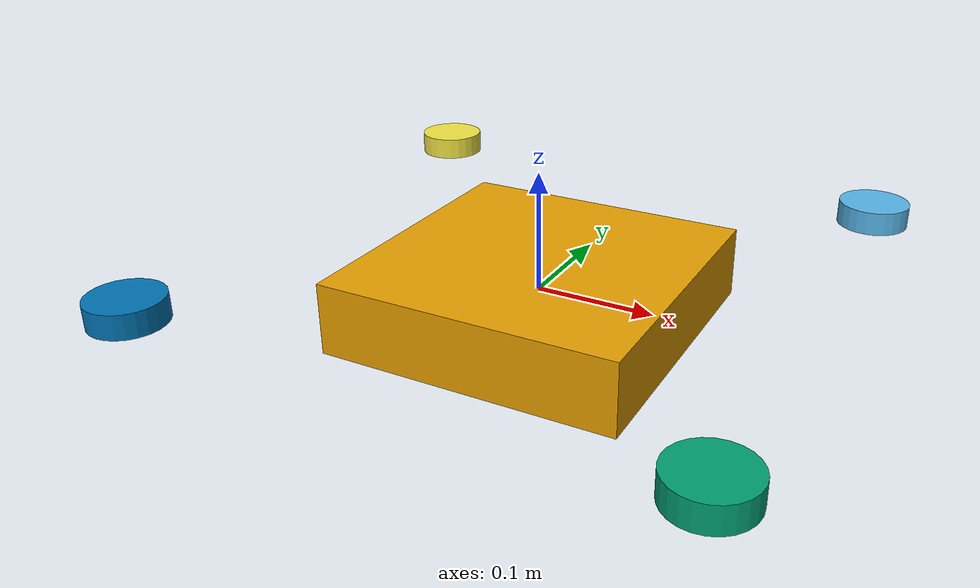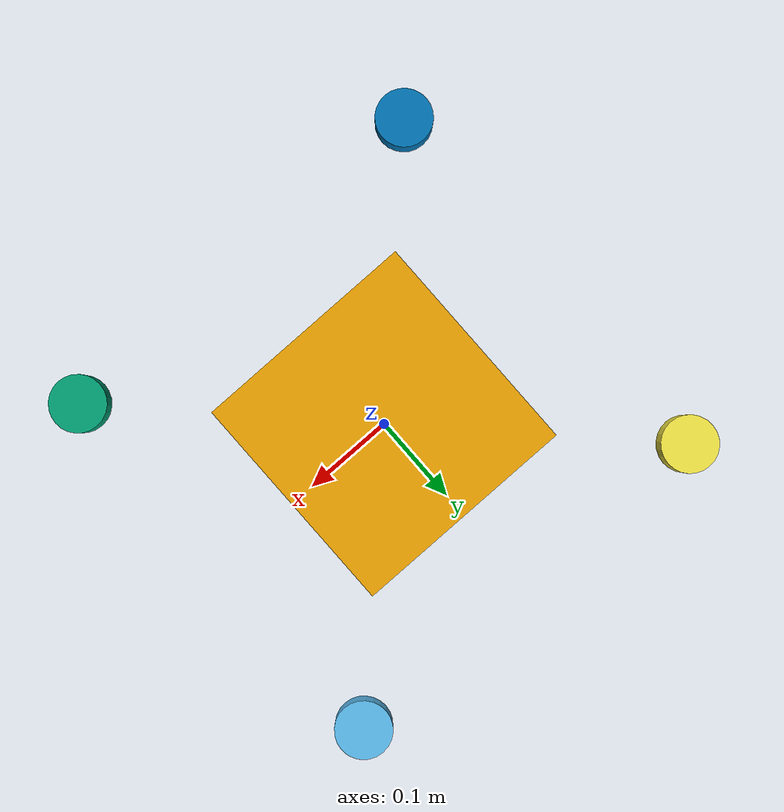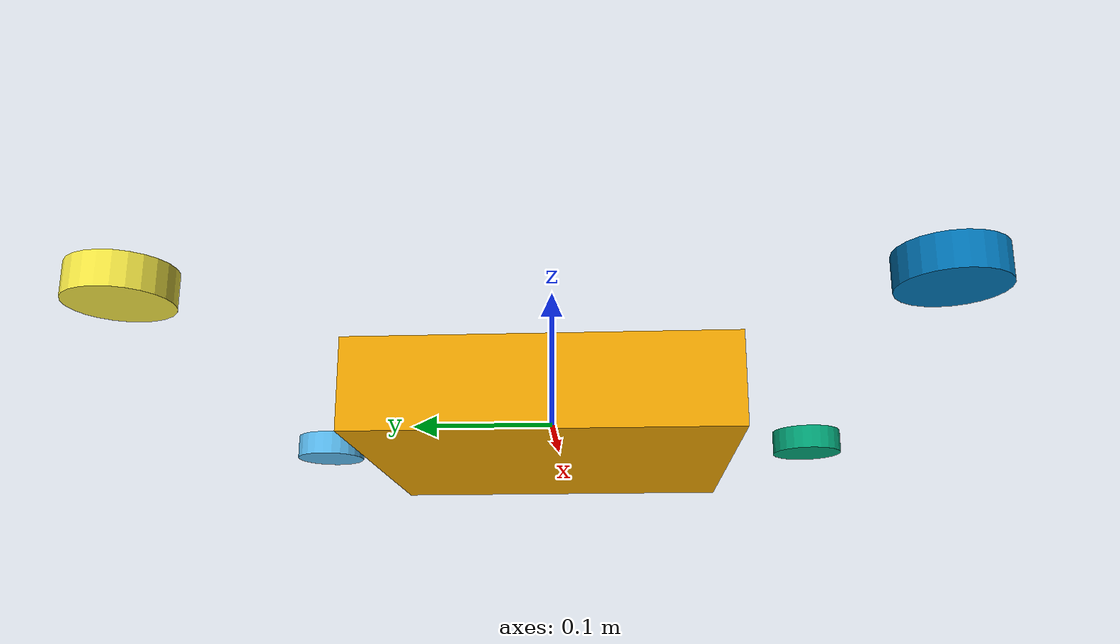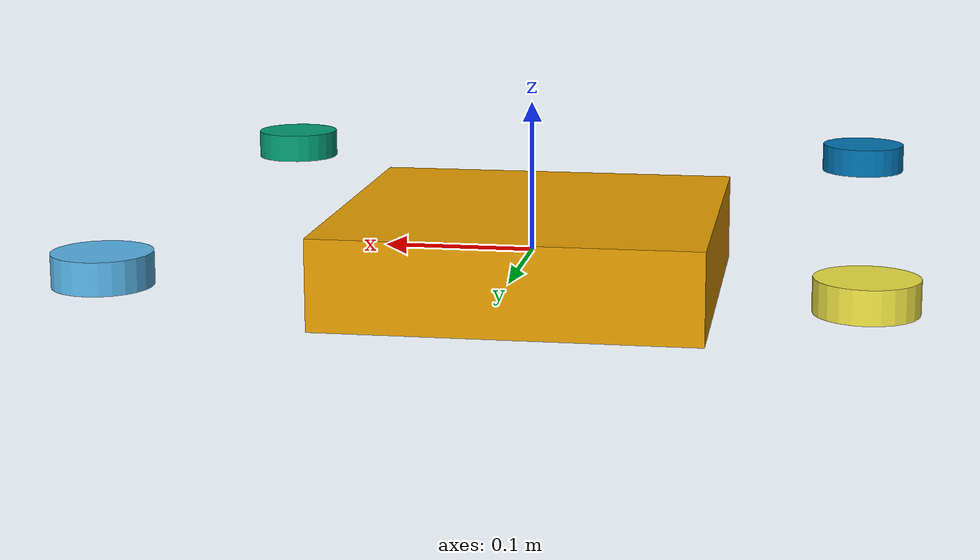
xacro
<?xml version="1.0"?>
<robot name="omni_clean_drone" xmlns:xacro="http://www.ros.org/wiki/xacro">
  <xacro:property name="m_base" value="1.2"/> <!-- kg -->
  <xacro:property name="arm" value="0.22"/>

  <link name="base_link">
    <inertial><mass value="${m_base}"/>
      <origin xyz="0 0 0"/>
      <inertia ixx="0.02" iyy="0.02" izz="0.03" ixy="0" ixz="0" iyz="0"/>
    </inertial>
    <visual><geometry><box size="0.25 0.25 0.06"/></geometry></visual>
    <collision><geometry><box size="0.25 0.25 0.06"/></geometry></collision>
  </link>

  <!-- 4 motor stubs (visuals for now) -->
  <xacro:macro name="arm_motor" params="name x y">
    <link name="${name}">
      <visual><geometry><cylinder radius="0.03" length="0.02"/></geometry></visual>
      <collision><geometry><cylinder radius="0.03" length="0.02"/></geometry></collision>
    </link>
    <joint name="${name}_joint" type="fixed">
      <parent link="base_link"/><child link="${name}"/>
      <origin xyz="${x} ${y} 0.03"/>
    </joint>
  </xacro:macro>

  <xacro:arm_motor name="motor_fl" x="${arm}"  y="${arm}"/>
  <xacro:arm_motor name="motor_fr" x="${arm}"  y="-${arm}"/>
  <xacro:arm_motor name="motor_bl" x="-${arm}" y="${arm}"/>
  <xacro:arm_motor name="motor_br" x="-${arm}" y="-${arm}"/>

  <!-- IMU for later control/sensing -->
  <gazebo reference="base_link">
    <sensor name="imu" type="imu">
      <update_rate>200</update_rate>
    </sensor>
  </gazebo>
</robot>
